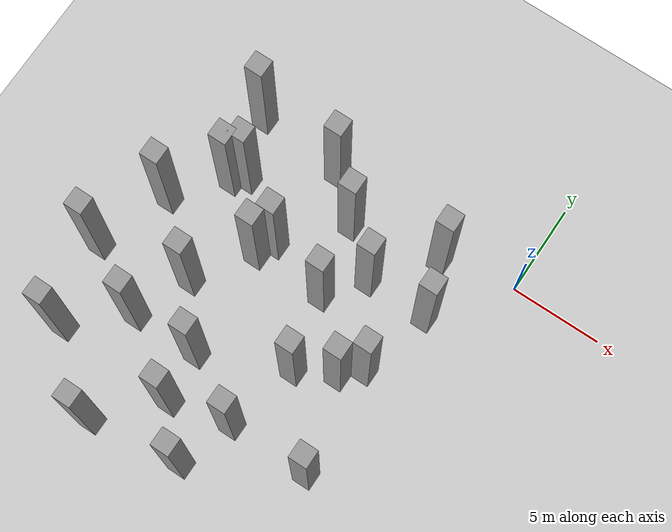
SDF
<sdf version="1.7">
 <world name="default">
  <model name="ground_plane">
   <static>1</static>
   <link name="link">
    <collision name="collision">
     <geometry><plane><normal>0 0 1</normal><size>100 100</size></plane></geometry>
     <surface>
      <contact><collide_bitmask>65535</collide_bitmask></contact>
      <friction><ode><mu>100</mu><mu2>50</mu2></ode></friction>
     </surface>
    </collision>
    <visual name="visual">
     <cast_shadows>0</cast_shadows>
     <geometry><plane><normal>0 0 1</normal><size>100 100</size></plane></geometry>
     <material>
      <script><uri>file://media/materials/scripts/gazebo.material</uri><name>Gazebo/Grey</name></script>
     </material>
    </visual>
   </link>
  </model>
  <model name="unit_box_static95_clone_4">
   <link name="link">
    <inertial>
     <mass>1</mass>
     <inertia>
      <ixx>0.166667</ixx>
      <ixy>0</ixy>
      <ixz>0</ixz>
      <iyy>0.166667</iyy>
      <iyz>0</iyz>
      <izz>0.166667</izz>
     </inertia>
    </inertial>
    <visual name="visual">
     <geometry><box><size>1 1 8</size></box></geometry>
     <material>
      <script><name>Gazebo/Grey</name><uri>file://media/materials/scripts/gazebo.material</uri></script>
      <shader type="pixel"/>
     </material>
    </visual>
    <collision name="collision">
     <geometry><box><size>1 1 8</size></box></geometry>
     <surface>
      <friction>
       <ode><mu>1</mu><mu2>1</mu2><fdir1>0 0 0</fdir1><slip1>0</slip1><slip2>0</slip2></ode>
       <torsional>
        <coefficient>1</coefficient>
        <patch_radius>0</patch_radius>
        <surface_radius>0</surface_radius>
        <use_patch_radius>1</use_patch_radius>
        <ode><slip>0</slip></ode>
       </torsional>
      </friction>
      <bounce><restitution_coefficient>0</restitution_coefficient><threshold>1e+06</threshold></bounce>
      <contact>
       <collide_without_contact>0</collide_without_contact>
       <collide_without_contact_bitmask>1</collide_without_contact_bitmask>
       <collide_bitmask>1</collide_bitmask>
       <ode>
        <soft_cfm>0</soft_cfm>
        <soft_erp>0.2</soft_erp>
        <kp>1e+13</kp>
        <kd>1</kd>
        <max_vel>0.01</max_vel>
        <min_depth>0</min_depth>
       </ode>
       <bullet>
        <split_impulse>1</split_impulse>
        <split_impulse_penetration_threshold>-0.01</split_impulse_penetration_threshold>
        <soft_cfm>0</soft_cfm>
        <soft_erp>0.2</soft_erp>
        <kp>1e+13</kp>
        <kd>1</kd>
       </bullet>
      </contact>
     </surface>
    </collision>
   </link>
   <static>1</static>
   <pose>-3 -4 4 0 -0 0</pose>
  </model>
  <model name="unit_box_static95_clone_5">
   <link name="link">
    <inertial>
     <mass>1</mass>
     <inertia>
      <ixx>0.166667</ixx>
      <ixy>0</ixy>
      <ixz>0</ixz>
      <iyy>0.166667</iyy>
      <iyz>0</iyz>
      <izz>0.166667</izz>
     </inertia>
    </inertial>
    <visual name="visual">
     <geometry><box><size>1 1 8</size></box></geometry>
     <material>
      <script><name>Gazebo/Grey</name><uri>file://media/materials/scripts/gazebo.material</uri></script>
      <shader type="pixel"/>
     </material>
    </visual>
    <collision name="collision">
     <geometry><box><size>1 1 8</size></box></geometry>
     <surface>
      <friction>
       <ode><mu>1</mu><mu2>1</mu2><fdir1>0 0 0</fdir1><slip1>0</slip1><slip2>0</slip2></ode>
       <torsional>
        <coefficient>1</coefficient>
        <patch_radius>0</patch_radius>
        <surface_radius>0</surface_radius>
        <use_patch_radius>1</use_patch_radius>
        <ode><slip>0</slip></ode>
       </torsional>
      </friction>
      <bounce><restitution_coefficient>0</restitution_coefficient><threshold>1e+06</threshold></bounce>
      <contact>
       <collide_without_contact>0</collide_without_contact>
       <collide_without_contact_bitmask>1</collide_without_contact_bitmask>
       <collide_bitmask>1</collide_bitmask>
       <ode>
        <soft_cfm>0</soft_cfm>
        <soft_erp>0.2</soft_erp>
        <kp>1e+13</kp>
        <kd>1</kd>
        <max_vel>0.01</max_vel>
        <min_depth>0</min_depth>
       </ode>
       <bullet>
        <split_impulse>1</split_impulse>
        <split_impulse_penetration_threshold>-0.01</split_impulse_penetration_threshold>
        <soft_cfm>0</soft_cfm>
        <soft_erp>0.2</soft_erp>
        <kp>1e+13</kp>
        <kd>1</kd>
       </bullet>
      </contact>
     </surface>
    </collision>
   </link>
   <static>1</static>
   <pose>-4 -1 4 0 -0 0</pose>
  </model>
  <model name="unit_box_static95_clone_6">
   <link name="link">
    <inertial>
     <mass>1</mass>
     <inertia>
      <ixx>0.166667</ixx>
      <ixy>0</ixy>
      <ixz>0</ixz>
      <iyy>0.166667</iyy>
      <iyz>0</iyz>
      <izz>0.166667</izz>
     </inertia>
    </inertial>
    <visual name="visual">
     <geometry><box><size>1 1 8</size></box></geometry>
     <material>
      <script><name>Gazebo/Grey</name><uri>file://media/materials/scripts/gazebo.material</uri></script>
      <shader type="pixel"/>
     </material>
    </visual>
    <collision name="collision">
     <geometry><box><size>1 1 8</size></box></geometry>
     <surface>
      <friction>
       <ode><mu>1</mu><mu2>1</mu2><fdir1>0 0 0</fdir1><slip1>0</slip1><slip2>0</slip2></ode>
       <torsional>
        <coefficient>1</coefficient>
        <patch_radius>0</patch_radius>
        <surface_radius>0</surface_radius>
        <use_patch_radius>1</use_patch_radius>
        <ode><slip>0</slip></ode>
       </torsional>
      </friction>
      <bounce><restitution_coefficient>0</restitution_coefficient><threshold>1e+06</threshold></bounce>
      <contact>
       <collide_without_contact>0</collide_without_contact>
       <collide_without_contact_bitmask>1</collide_without_contact_bitmask>
       <collide_bitmask>1</collide_bitmask>
       <ode>
        <soft_cfm>0</soft_cfm>
        <soft_erp>0.2</soft_erp>
        <kp>1e+13</kp>
        <kd>1</kd>
        <max_vel>0.01</max_vel>
        <min_depth>0</min_depth>
       </ode>
       <bullet>
        <split_impulse>1</split_impulse>
        <split_impulse_penetration_threshold>-0.01</split_impulse_penetration_threshold>
        <soft_cfm>0</soft_cfm>
        <soft_erp>0.2</soft_erp>
        <kp>1e+13</kp>
        <kd>1</kd>
       </bullet>
      </contact>
     </surface>
    </collision>
   </link>
   <static>1</static>
   <pose>-6.45206 -4 4 0 -0 0</pose>
  </model>
  <model name="unit_box_static95_clone_7">
   <link name="link">
    <inertial>
     <mass>1</mass>
     <inertia>
      <ixx>0.166667</ixx>
      <ixy>0</ixy>
      <ixz>0</ixz>
      <iyy>0.166667</iyy>
      <iyz>0</iyz>
      <izz>0.166667</izz>
     </inertia>
    </inertial>
    <visual name="visual">
     <geometry><box><size>1 1 8</size></box></geometry>
     <material>
      <script><name>Gazebo/Grey</name><uri>file://media/materials/scripts/gazebo.material</uri></script>
      <shader type="pixel"/>
     </material>
    </visual>
    <collision name="collision">
     <geometry><box><size>1 1 8</size></box></geometry>
     <surface>
      <friction>
       <ode><mu>1</mu><mu2>1</mu2><fdir1>0 0 0</fdir1><slip1>0</slip1><slip2>0</slip2></ode>
       <torsional>
        <coefficient>1</coefficient>
        <patch_radius>0</patch_radius>
        <surface_radius>0</surface_radius>
        <use_patch_radius>1</use_patch_radius>
        <ode><slip>0</slip></ode>
       </torsional>
      </friction>
      <bounce><restitution_coefficient>0</restitution_coefficient><threshold>1e+06</threshold></bounce>
      <contact>
       <collide_without_contact>0</collide_without_contact>
       <collide_without_contact_bitmask>1</collide_without_contact_bitmask>
       <collide_bitmask>1</collide_bitmask>
       <ode>
        <soft_cfm>0</soft_cfm>
        <soft_erp>0.2</soft_erp>
        <kp>1e+13</kp>
        <kd>1</kd>
        <max_vel>0.01</max_vel>
        <min_depth>0</min_depth>
       </ode>
       <bullet>
        <split_impulse>1</split_impulse>
        <split_impulse_penetration_threshold>-0.01</split_impulse_penetration_threshold>
        <soft_cfm>0</soft_cfm>
        <soft_erp>0.2</soft_erp>
        <kp>1e+13</kp>
        <kd>1</kd>
       </bullet>
      </contact>
     </surface>
    </collision>
   </link>
   <static>1</static>
   <pose>-7 -10 4 0 -0 0</pose>
  </model>
  <model name="unit_box_static95_clone_8">
   <link name="link">
    <inertial>
     <mass>1</mass>
     <inertia>
      <ixx>0.166667</ixx>
      <ixy>0</ixy>
      <ixz>0</ixz>
      <iyy>0.166667</iyy>
      <iyz>0</iyz>
      <izz>0.166667</izz>
     </inertia>
    </inertial>
    <visual name="visual">
     <geometry><box><size>1 1 8</size></box></geometry>
     <material>
      <script><name>Gazebo/Grey</name><uri>file://media/materials/scripts/gazebo.material</uri></script>
      <shader type="pixel"/>
     </material>
    </visual>
    <collision name="collision">
     <geometry><box><size>1 1 8</size></box></geometry>
     <surface>
      <friction>
       <ode><mu>1</mu><mu2>1</mu2><fdir1>0 0 0</fdir1><slip1>0</slip1><slip2>0</slip2></ode>
       <torsional>
        <coefficient>1</coefficient>
        <patch_radius>0</patch_radius>
        <surface_radius>0</surface_radius>
        <use_patch_radius>1</use_patch_radius>
        <ode><slip>0</slip></ode>
       </torsional>
      </friction>
      <bounce><restitution_coefficient>0</restitution_coefficient><threshold>1e+06</threshold></bounce>
      <contact>
       <collide_without_contact>0</collide_without_contact>
       <collide_without_contact_bitmask>1</collide_without_contact_bitmask>
       <collide_bitmask>1</collide_bitmask>
       <ode>
        <soft_cfm>0</soft_cfm>
        <soft_erp>0.2</soft_erp>
        <kp>1e+13</kp>
        <kd>1</kd>
        <max_vel>0.01</max_vel>
        <min_depth>0</min_depth>
       </ode>
       <bullet>
        <split_impulse>1</split_impulse>
        <split_impulse_penetration_threshold>-0.01</split_impulse_penetration_threshold>
        <soft_cfm>0</soft_cfm>
        <soft_erp>0.2</soft_erp>
        <kp>1e+13</kp>
        <kd>1</kd>
       </bullet>
      </contact>
     </surface>
    </collision>
   </link>
   <static>1</static>
   <pose>-9 -17 4 0 -0 0</pose>
  </model>
  <model name="unit_box_static95_clone_9">
   <link name="link">
    <inertial>
     <mass>1</mass>
     <inertia>
      <ixx>0.166667</ixx>
      <ixy>0</ixy>
      <ixz>0</ixz>
      <iyy>0.166667</iyy>
      <iyz>0</iyz>
      <izz>0.166667</izz>
     </inertia>
    </inertial>
    <visual name="visual">
     <geometry><box><size>1 1 8</size></box></geometry>
     <material>
      <script><name>Gazebo/Grey</name><uri>file://media/materials/scripts/gazebo.material</uri></script>
      <shader type="pixel"/>
     </material>
    </visual>
    <collision name="collision">
     <geometry><box><size>1 1 8</size></box></geometry>
     <surface>
      <friction>
       <ode><mu>1</mu><mu2>1</mu2><fdir1>0 0 0</fdir1><slip1>0</slip1><slip2>0</slip2></ode>
       <torsional>
        <coefficient>1</coefficient>
        <patch_radius>0</patch_radius>
        <surface_radius>0</surface_radius>
        <use_patch_radius>1</use_patch_radius>
        <ode><slip>0</slip></ode>
       </torsional>
      </friction>
      <bounce><restitution_coefficient>0</restitution_coefficient><threshold>1e+06</threshold></bounce>
      <contact>
       <collide_without_contact>0</collide_without_contact>
       <collide_without_contact_bitmask>1</collide_without_contact_bitmask>
       <collide_bitmask>1</collide_bitmask>
       <ode>
        <soft_cfm>0</soft_cfm>
        <soft_erp>0.2</soft_erp>
        <kp>1e+13</kp>
        <kd>1</kd>
        <max_vel>0.01</max_vel>
        <min_depth>0</min_depth>
       </ode>
       <bullet>
        <split_impulse>1</split_impulse>
        <split_impulse_penetration_threshold>-0.01</split_impulse_penetration_threshold>
        <soft_cfm>0</soft_cfm>
        <soft_erp>0.2</soft_erp>
        <kp>1e+13</kp>
        <kd>1</kd>
       </bullet>
      </contact>
     </surface>
    </collision>
   </link>
   <static>1</static>
   <pose>-11.5727 -12 4 0 -0 0</pose>
  </model>
  <model name="unit_box_static95_clone_10">
   <link name="link">
    <inertial>
     <mass>1</mass>
     <inertia>
      <ixx>0.166667</ixx>
      <ixy>0</ixy>
      <ixz>0</ixz>
      <iyy>0.166667</iyy>
      <iyz>0</iyz>
      <izz>0.166667</izz>
     </inertia>
    </inertial>
    <visual name="visual">
     <geometry><box><size>1 1 8</size></box></geometry>
     <material>
      <script><name>Gazebo/Grey</name><uri>file://media/materials/scripts/gazebo.material</uri></script>
      <shader type="pixel"/>
     </material>
    </visual>
    <collision name="collision">
     <geometry><box><size>1 1 8</size></box></geometry>
     <surface>
      <friction>
       <ode><mu>1</mu><mu2>1</mu2><fdir1>0 0 0</fdir1><slip1>0</slip1><slip2>0</slip2></ode>
       <torsional>
        <coefficient>1</coefficient>
        <patch_radius>0</patch_radius>
        <surface_radius>0</surface_radius>
        <use_patch_radius>1</use_patch_radius>
        <ode><slip>0</slip></ode>
       </torsional>
      </friction>
      <bounce><restitution_coefficient>0</restitution_coefficient><threshold>1e+06</threshold></bounce>
      <contact>
       <collide_without_contact>0</collide_without_contact>
       <collide_without_contact_bitmask>1</collide_without_contact_bitmask>
       <collide_bitmask>1</collide_bitmask>
       <ode>
        <soft_cfm>0</soft_cfm>
        <soft_erp>0.2</soft_erp>
        <kp>1e+13</kp>
        <kd>1</kd>
        <max_vel>0.01</max_vel>
        <min_depth>0</min_depth>
       </ode>
       <bullet>
        <split_impulse>1</split_impulse>
        <split_impulse_penetration_threshold>-0.01</split_impulse_penetration_threshold>
        <soft_cfm>0</soft_cfm>
        <soft_erp>0.2</soft_erp>
        <kp>1e+13</kp>
        <kd>1</kd>
       </bullet>
      </contact>
     </surface>
    </collision>
   </link>
   <static>1</static>
   <pose>-12 -6 4 0 -0 0</pose>
  </model>
  <model name="unit_box_static95_clone_31">
   <link name="link">
    <inertial>
     <mass>1</mass>
     <inertia>
      <ixx>0.166667</ixx>
      <ixy>0</ixy>
      <ixz>0</ixz>
      <iyy>0.166667</iyy>
      <iyz>0</iyz>
      <izz>0.166667</izz>
     </inertia>
    </inertial>
    <visual name="visual">
     <geometry><box><size>1 1 8</size></box></geometry>
     <material>
      <script><name>Gazebo/Grey</name><uri>file://media/materials/scripts/gazebo.material</uri></script>
      <shader type="pixel"/>
     </material>
    </visual>
    <collision name="collision">
     <geometry><box><size>1 1 8</size></box></geometry>
     <surface>
      <friction>
       <ode><mu>1</mu><mu2>1</mu2><fdir1>0 0 0</fdir1><slip1>0</slip1><slip2>0</slip2></ode>
       <torsional>
        <coefficient>1</coefficient>
        <patch_radius>0</patch_radius>
        <surface_radius>0</surface_radius>
        <use_patch_radius>1</use_patch_radius>
        <ode><slip>0</slip></ode>
       </torsional>
      </friction>
      <bounce><restitution_coefficient>0</restitution_coefficient><threshold>1e+06</threshold></bounce>
      <contact>
       <collide_without_contact>0</collide_without_contact>
       <collide_without_contact_bitmask>1</collide_without_contact_bitmask>
       <collide_bitmask>1</collide_bitmask>
       <ode>
        <soft_cfm>0</soft_cfm>
        <soft_erp>0.2</soft_erp>
        <kp>1e+13</kp>
        <kd>1</kd>
        <max_vel>0.01</max_vel>
        <min_depth>0</min_depth>
       </ode>
       <bullet>
        <split_impulse>1</split_impulse>
        <split_impulse_penetration_threshold>-0.01</split_impulse_penetration_threshold>
        <soft_cfm>0</soft_cfm>
        <soft_erp>0.2</soft_erp>
        <kp>1e+13</kp>
        <kd>1</kd>
       </bullet>
      </contact>
     </surface>
    </collision>
   </link>
   <static>1</static>
   <pose>-3.52618 -14 4 0 -0 0</pose>
  </model>
  <model name="unit_box_static95_clone_32">
   <link name="link">
    <inertial>
     <mass>1</mass>
     <inertia>
      <ixx>0.166667</ixx>
      <ixy>0</ixy>
      <ixz>0</ixz>
      <iyy>0.166667</iyy>
      <iyz>0</iyz>
      <izz>0.166667</izz>
     </inertia>
    </inertial>
    <visual name="visual">
     <geometry><box><size>1 1 8</size></box></geometry>
     <material>
      <script><name>Gazebo/Grey</name><uri>file://media/materials/scripts/gazebo.material</uri></script>
      <shader type="pixel"/>
     </material>
    </visual>
    <collision name="collision">
     <geometry><box><size>1 1 8</size></box></geometry>
     <surface>
      <friction>
       <ode><mu>1</mu><mu2>1</mu2><fdir1>0 0 0</fdir1><slip1>0</slip1><slip2>0</slip2></ode>
       <torsional>
        <coefficient>1</coefficient>
        <patch_radius>0</patch_radius>
        <surface_radius>0</surface_radius>
        <use_patch_radius>1</use_patch_radius>
        <ode><slip>0</slip></ode>
       </torsional>
      </friction>
      <bounce><restitution_coefficient>0</restitution_coefficient><threshold>1e+06</threshold></bounce>
      <contact>
       <collide_without_contact>0</collide_without_contact>
       <collide_without_contact_bitmask>1</collide_without_contact_bitmask>
       <collide_bitmask>1</collide_bitmask>
       <ode>
        <soft_cfm>0</soft_cfm>
        <soft_erp>0.2</soft_erp>
        <kp>1e+13</kp>
        <kd>1</kd>
        <max_vel>0.01</max_vel>
        <min_depth>0</min_depth>
       </ode>
       <bullet>
        <split_impulse>1</split_impulse>
        <split_impulse_penetration_threshold>-0.01</split_impulse_penetration_threshold>
        <soft_cfm>0</soft_cfm>
        <soft_erp>0.2</soft_erp>
        <kp>1e+13</kp>
        <kd>1</kd>
       </bullet>
      </contact>
     </surface>
    </collision>
   </link>
   <static>1</static>
   <pose>-5 -9 4 0 -0 0</pose>
  </model>
  <model name="unit_box_static95_clone_33">
   <link name="link">
    <inertial>
     <mass>1</mass>
     <inertia>
      <ixx>0.166667</ixx>
      <ixy>0</ixy>
      <ixz>0</ixz>
      <iyy>0.166667</iyy>
      <iyz>0</iyz>
      <izz>0.166667</izz>
     </inertia>
    </inertial>
    <visual name="visual">
     <geometry><box><size>1 1 8</size></box></geometry>
     <material>
      <script><name>Gazebo/Grey</name><uri>file://media/materials/scripts/gazebo.material</uri></script>
      <shader type="pixel"/>
     </material>
    </visual>
    <collision name="collision">
     <geometry><box><size>1 1 8</size></box></geometry>
     <surface>
      <friction>
       <ode><mu>1</mu><mu2>1</mu2><fdir1>0 0 0</fdir1><slip1>0</slip1><slip2>0</slip2></ode>
       <torsional>
        <coefficient>1</coefficient>
        <patch_radius>0</patch_radius>
        <surface_radius>0</surface_radius>
        <use_patch_radius>1</use_patch_radius>
        <ode><slip>0</slip></ode>
       </torsional>
      </friction>
      <bounce><restitution_coefficient>0</restitution_coefficient><threshold>1e+06</threshold></bounce>
      <contact>
       <collide_without_contact>0</collide_without_contact>
       <collide_without_contact_bitmask>1</collide_without_contact_bitmask>
       <collide_bitmask>1</collide_bitmask>
       <ode>
        <soft_cfm>0</soft_cfm>
        <soft_erp>0.2</soft_erp>
        <kp>1e+13</kp>
        <kd>1</kd>
        <max_vel>0.01</max_vel>
        <min_depth>0</min_depth>
       </ode>
       <bullet>
        <split_impulse>1</split_impulse>
        <split_impulse_penetration_threshold>-0.01</split_impulse_penetration_threshold>
        <soft_cfm>0</soft_cfm>
        <soft_erp>0.2</soft_erp>
        <kp>1e+13</kp>
        <kd>1</kd>
       </bullet>
      </contact>
     </surface>
    </collision>
   </link>
   <static>1</static>
   <pose>-8 -6 4 0 -0 0</pose>
  </model>
  <model name="unit_box_static95_clone_34">
   <link name="link">
    <inertial>
     <mass>1</mass>
     <inertia>
      <ixx>0.166667</ixx>
      <ixy>0</ixy>
      <ixz>0</ixz>
      <iyy>0.166667</iyy>
      <iyz>0</iyz>
      <izz>0.166667</izz>
     </inertia>
    </inertial>
    <visual name="visual">
     <geometry><box><size>1 1 8</size></box></geometry>
     <material>
      <script><name>Gazebo/Grey</name><uri>file://media/materials/scripts/gazebo.material</uri></script>
      <shader type="pixel"/>
     </material>
    </visual>
    <collision name="collision">
     <geometry><box><size>1 1 8</size></box></geometry>
     <surface>
      <friction>
       <ode><mu>1</mu><mu2>1</mu2><fdir1>0 0 0</fdir1><slip1>0</slip1><slip2>0</slip2></ode>
       <torsional>
        <coefficient>1</coefficient>
        <patch_radius>0</patch_radius>
        <surface_radius>0</surface_radius>
        <use_patch_radius>1</use_patch_radius>
        <ode><slip>0</slip></ode>
       </torsional>
      </friction>
      <bounce><restitution_coefficient>0</restitution_coefficient><threshold>1e+06</threshold></bounce>
      <contact>
       <collide_without_contact>0</collide_without_contact>
       <collide_without_contact_bitmask>1</collide_without_contact_bitmask>
       <collide_bitmask>1</collide_bitmask>
       <ode>
        <soft_cfm>0</soft_cfm>
        <soft_erp>0.2</soft_erp>
        <kp>1e+13</kp>
        <kd>1</kd>
        <max_vel>0.01</max_vel>
        <min_depth>0</min_depth>
       </ode>
       <bullet>
        <split_impulse>1</split_impulse>
        <split_impulse_penetration_threshold>-0.01</split_impulse_penetration_threshold>
        <soft_cfm>0</soft_cfm>
        <soft_erp>0.2</soft_erp>
        <kp>1e+13</kp>
        <kd>1</kd>
       </bullet>
      </contact>
     </surface>
    </collision>
   </link>
   <static>1</static>
   <pose>-14.6808 -2.83326 4 0 -0 0</pose>
  </model>
  <model name="unit_box_static95_clone_60">
   <link name="link">
    <inertial>
     <mass>1</mass>
     <inertia>
      <ixx>0.166667</ixx>
      <ixy>0</ixy>
      <ixz>0</ixz>
      <iyy>0.166667</iyy>
      <iyz>0</iyz>
      <izz>0.166667</izz>
     </inertia>
    </inertial>
    <visual name="visual">
     <geometry><box><size>1 1 8</size></box></geometry>
     <material>
      <script><name>Gazebo/Grey</name><uri>file://media/materials/scripts/gazebo.material</uri></script>
      <shader type="pixel"/>
     </material>
    </visual>
    <collision name="collision">
     <geometry><box><size>1 1 8</size></box></geometry>
     <surface>
      <friction>
       <ode><mu>1</mu><mu2>1</mu2><fdir1>0 0 0</fdir1><slip1>0</slip1><slip2>0</slip2></ode>
       <torsional>
        <coefficient>1</coefficient>
        <patch_radius>0</patch_radius>
        <surface_radius>0</surface_radius>
        <use_patch_radius>1</use_patch_radius>
        <ode><slip>0</slip></ode>
       </torsional>
      </friction>
      <bounce><restitution_coefficient>0</restitution_coefficient><threshold>1e+06</threshold></bounce>
      <contact>
       <collide_without_contact>0</collide_without_contact>
       <collide_without_contact_bitmask>1</collide_without_contact_bitmask>
       <collide_bitmask>1</collide_bitmask>
       <ode>
        <soft_cfm>0</soft_cfm>
        <soft_erp>0.2</soft_erp>
        <kp>1e+13</kp>
        <kd>1</kd>
        <max_vel>0.01</max_vel>
        <min_depth>0</min_depth>
       </ode>
       <bullet>
        <split_impulse>1</split_impulse>
        <split_impulse_penetration_threshold>-0.01</split_impulse_penetration_threshold>
        <soft_cfm>0</soft_cfm>
        <soft_erp>0.2</soft_erp>
        <kp>1e+13</kp>
        <kd>1</kd>
       </bullet>
      </contact>
     </surface>
    </collision>
   </link>
   <static>1</static>
   <pose>-4 -8 4 0 -0 0</pose>
  </model>
  <model name="unit_box_static95_clone_62">
   <link name="link">
    <inertial>
     <mass>1</mass>
     <inertia>
      <ixx>0.166667</ixx>
      <ixy>0</ixy>
      <ixz>0</ixz>
      <iyy>0.166667</iyy>
      <iyz>0</iyz>
      <izz>0.166667</izz>
     </inertia>
    </inertial>
    <visual name="visual">
     <geometry><box><size>1 1 8</size></box></geometry>
     <material>
      <script><name>Gazebo/Grey</name><uri>file://media/materials/scripts/gazebo.material</uri></script>
      <shader type="pixel"/>
     </material>
    </visual>
    <collision name="collision">
     <geometry><box><size>1 1 8</size></box></geometry>
     <surface>
      <friction>
       <ode><mu>1</mu><mu2>1</mu2><fdir1>0 0 0</fdir1><slip1>0</slip1><slip2>0</slip2></ode>
       <torsional>
        <coefficient>1</coefficient>
        <patch_radius>0</patch_radius>
        <surface_radius>0</surface_radius>
        <use_patch_radius>1</use_patch_radius>
        <ode><slip>0</slip></ode>
       </torsional>
      </friction>
      <bounce><restitution_coefficient>0</restitution_coefficient><threshold>1e+06</threshold></bounce>
      <contact>
       <collide_without_contact>0</collide_without_contact>
       <collide_without_contact_bitmask>1</collide_without_contact_bitmask>
       <collide_bitmask>1</collide_bitmask>
       <ode>
        <soft_cfm>0</soft_cfm>
        <soft_erp>0.2</soft_erp>
        <kp>1e+13</kp>
        <kd>1</kd>
        <max_vel>0.01</max_vel>
        <min_depth>0</min_depth>
       </ode>
       <bullet>
        <split_impulse>1</split_impulse>
        <split_impulse_penetration_threshold>-0.01</split_impulse_penetration_threshold>
        <soft_cfm>0</soft_cfm>
        <soft_erp>0.2</soft_erp>
        <kp>1e+13</kp>
        <kd>1</kd>
       </bullet>
      </contact>
     </surface>
    </collision>
   </link>
   <static>1</static>
   <pose>-11 0 4 0 -0 0</pose>
  </model>
  <model name="unit_box_static95_clone_63">
   <link name="link">
    <inertial>
     <mass>1</mass>
     <inertia>
      <ixx>0.166667</ixx>
      <ixy>0</ixy>
      <ixz>0</ixz>
      <iyy>0.166667</iyy>
      <iyz>0</iyz>
      <izz>0.166667</izz>
     </inertia>
    </inertial>
    <visual name="visual">
     <geometry><box><size>1 1 8</size></box></geometry>
     <material>
      <script><name>Gazebo/Grey</name><uri>file://media/materials/scripts/gazebo.material</uri></script>
      <shader type="pixel"/>
     </material>
    </visual>
    <collision name="collision">
     <geometry><box><size>1 1 8</size></box></geometry>
     <surface>
      <friction>
       <ode><mu>1</mu><mu2>1</mu2><fdir1>0 0 0</fdir1><slip1>0</slip1><slip2>0</slip2></ode>
       <torsional>
        <coefficient>1</coefficient>
        <patch_radius>0</patch_radius>
        <surface_radius>0</surface_radius>
        <use_patch_radius>1</use_patch_radius>
        <ode><slip>0</slip></ode>
       </torsional>
      </friction>
      <bounce><restitution_coefficient>0</restitution_coefficient><threshold>1e+06</threshold></bounce>
      <contact>
       <collide_without_contact>0</collide_without_contact>
       <collide_without_contact_bitmask>1</collide_without_contact_bitmask>
       <collide_bitmask>1</collide_bitmask>
       <ode>
        <soft_cfm>0</soft_cfm>
        <soft_erp>0.2</soft_erp>
        <kp>1e+13</kp>
        <kd>1</kd>
        <max_vel>0.01</max_vel>
        <min_depth>0</min_depth>
       </ode>
       <bullet>
        <split_impulse>1</split_impulse>
        <split_impulse_penetration_threshold>-0.01</split_impulse_penetration_threshold>
        <soft_cfm>0</soft_cfm>
        <soft_erp>0.2</soft_erp>
        <kp>1e+13</kp>
        <kd>1</kd>
       </bullet>
      </contact>
     </surface>
    </collision>
   </link>
   <static>1</static>
   <pose>-15.3485 -3.40813 4 0 -0 0</pose>
  </model>
  <model name="unit_box_static95_clone_79">
   <link name="link">
    <inertial>
     <mass>1</mass>
     <inertia>
      <ixx>0.166667</ixx>
      <ixy>0</ixy>
      <ixz>0</ixz>
      <iyy>0.166667</iyy>
      <iyz>0</iyz>
      <izz>0.166667</izz>
     </inertia>
    </inertial>
    <visual name="visual">
     <geometry><box><size>1 1 8</size></box></geometry>
     <material>
      <script><name>Gazebo/Grey</name><uri>file://media/materials/scripts/gazebo.material</uri></script>
      <shader type="pixel"/>
     </material>
    </visual>
    <collision name="collision">
     <geometry><box><size>1 1 8</size></box></geometry>
     <surface>
      <friction>
       <ode><mu>1</mu><mu2>1</mu2><fdir1>0 0 0</fdir1><slip1>0</slip1><slip2>0</slip2></ode>
       <torsional>
        <coefficient>1</coefficient>
        <patch_radius>0</patch_radius>
        <surface_radius>0</surface_radius>
        <use_patch_radius>1</use_patch_radius>
        <ode><slip>0</slip></ode>
       </torsional>
      </friction>
      <bounce><restitution_coefficient>0</restitution_coefficient><threshold>1e+06</threshold></bounce>
      <contact>
       <collide_without_contact>0</collide_without_contact>
       <collide_without_contact_bitmask>1</collide_without_contact_bitmask>
       <collide_bitmask>1</collide_bitmask>
       <ode>
        <soft_cfm>0</soft_cfm>
        <soft_erp>0.2</soft_erp>
        <kp>1e+13</kp>
        <kd>1</kd>
        <max_vel>0.01</max_vel>
        <min_depth>0</min_depth>
       </ode>
       <bullet>
        <split_impulse>1</split_impulse>
        <split_impulse_penetration_threshold>-0.01</split_impulse_penetration_threshold>
        <soft_cfm>0</soft_cfm>
        <soft_erp>0.2</soft_erp>
        <kp>1e+13</kp>
        <kd>1</kd>
       </bullet>
      </contact>
     </surface>
    </collision>
   </link>
   <static>1</static>
   <pose>-19 -10 4 0 -0 0</pose>
  </model>
  <model name="unit_box_static95_clone_80">
   <link name="link">
    <inertial>
     <mass>1</mass>
     <inertia>
      <ixx>0.166667</ixx>
      <ixy>0</ixy>
      <ixz>0</ixz>
      <iyy>0.166667</iyy>
      <iyz>0</iyz>
      <izz>0.166667</izz>
     </inertia>
    </inertial>
    <visual name="visual">
     <geometry><box><size>1 1 8</size></box></geometry>
     <material>
      <script><name>Gazebo/Grey</name><uri>file://media/materials/scripts/gazebo.material</uri></script>
      <shader type="pixel"/>
     </material>
    </visual>
    <collision name="collision">
     <geometry><box><size>1 1 8</size></box></geometry>
     <surface>
      <friction>
       <ode><mu>1</mu><mu2>1</mu2><fdir1>0 0 0</fdir1><slip1>0</slip1><slip2>0</slip2></ode>
       <torsional>
        <coefficient>1</coefficient>
        <patch_radius>0</patch_radius>
        <surface_radius>0</surface_radius>
        <use_patch_radius>1</use_patch_radius>
        <ode><slip>0</slip></ode>
       </torsional>
      </friction>
      <bounce><restitution_coefficient>0</restitution_coefficient><threshold>1e+06</threshold></bounce>
      <contact>
       <collide_without_contact>0</collide_without_contact>
       <collide_without_contact_bitmask>1</collide_without_contact_bitmask>
       <collide_bitmask>1</collide_bitmask>
       <ode>
        <soft_cfm>0</soft_cfm>
        <soft_erp>0.2</soft_erp>
        <kp>1e+13</kp>
        <kd>1</kd>
        <max_vel>0.01</max_vel>
        <min_depth>0</min_depth>
       </ode>
       <bullet>
        <split_impulse>1</split_impulse>
        <split_impulse_penetration_threshold>-0.01</split_impulse_penetration_threshold>
        <soft_cfm>0</soft_cfm>
        <soft_erp>0.2</soft_erp>
        <kp>1e+13</kp>
        <kd>1</kd>
       </bullet>
      </contact>
     </surface>
    </collision>
   </link>
   <static>1</static>
   <pose>-17.4954 -6 4 0 -0 0</pose>
  </model>
  <model name="unit_box_static95_clone_81">
   <link name="link">
    <inertial>
     <mass>1</mass>
     <inertia>
      <ixx>0.166667</ixx>
      <ixy>0</ixy>
      <ixz>0</ixz>
      <iyy>0.166667</iyy>
      <iyz>0</iyz>
      <izz>0.166667</izz>
     </inertia>
    </inertial>
    <visual name="visual">
     <geometry><box><size>1 1 8</size></box></geometry>
     <material>
      <script><name>Gazebo/Grey</name><uri>file://media/materials/scripts/gazebo.material</uri></script>
      <shader type="pixel"/>
     </material>
    </visual>
    <collision name="collision">
     <geometry><box><size>1 1 8</size></box></geometry>
     <surface>
      <friction>
       <ode><mu>1</mu><mu2>1</mu2><fdir1>0 0 0</fdir1><slip1>0</slip1><slip2>0</slip2></ode>
       <torsional>
        <coefficient>1</coefficient>
        <patch_radius>0</patch_radius>
        <surface_radius>0</surface_radius>
        <use_patch_radius>1</use_patch_radius>
        <ode><slip>0</slip></ode>
       </torsional>
      </friction>
      <bounce><restitution_coefficient>0</restitution_coefficient><threshold>1e+06</threshold></bounce>
      <contact>
       <collide_without_contact>0</collide_without_contact>
       <collide_without_contact_bitmask>1</collide_without_contact_bitmask>
       <collide_bitmask>1</collide_bitmask>
       <ode>
        <soft_cfm>0</soft_cfm>
        <soft_erp>0.2</soft_erp>
        <kp>1e+13</kp>
        <kd>1</kd>
        <max_vel>0.01</max_vel>
        <min_depth>0</min_depth>
       </ode>
       <bullet>
        <split_impulse>1</split_impulse>
        <split_impulse_penetration_threshold>-0.01</split_impulse_penetration_threshold>
        <soft_cfm>0</soft_cfm>
        <soft_erp>0.2</soft_erp>
        <kp>1e+13</kp>
        <kd>1</kd>
       </bullet>
      </contact>
     </surface>
    </collision>
   </link>
   <static>1</static>
   <pose>-18 -14.5584 4 0 -0 0</pose>
  </model>
  <model name="unit_box_static95_clone_82">
   <link name="link">
    <inertial>
     <mass>1</mass>
     <inertia>
      <ixx>0.166667</ixx>
      <ixy>0</ixy>
      <ixz>0</ixz>
      <iyy>0.166667</iyy>
      <iyz>0</iyz>
      <izz>0.166667</izz>
     </inertia>
    </inertial>
    <visual name="visual">
     <geometry><box><size>1 1 8</size></box></geometry>
     <material>
      <script><name>Gazebo/Grey</name><uri>file://media/materials/scripts/gazebo.material</uri></script>
      <shader type="pixel"/>
     </material>
    </visual>
    <collision name="collision">
     <geometry><box><size>1 1 8</size></box></geometry>
     <surface>
      <friction>
       <ode><mu>1</mu><mu2>1</mu2><fdir1>0 0 0</fdir1><slip1>0</slip1><slip2>0</slip2></ode>
       <torsional>
        <coefficient>1</coefficient>
        <patch_radius>0</patch_radius>
        <surface_radius>0</surface_radius>
        <use_patch_radius>1</use_patch_radius>
        <ode><slip>0</slip></ode>
       </torsional>
      </friction>
      <bounce><restitution_coefficient>0</restitution_coefficient><threshold>1e+06</threshold></bounce>
      <contact>
       <collide_without_contact>0</collide_without_contact>
       <collide_without_contact_bitmask>1</collide_without_contact_bitmask>
       <collide_bitmask>1</collide_bitmask>
       <ode>
        <soft_cfm>0</soft_cfm>
        <soft_erp>0.2</soft_erp>
        <kp>1e+13</kp>
        <kd>1</kd>
        <max_vel>0.01</max_vel>
        <min_depth>0</min_depth>
       </ode>
       <bullet>
        <split_impulse>1</split_impulse>
        <split_impulse_penetration_threshold>-0.01</split_impulse_penetration_threshold>
        <soft_cfm>0</soft_cfm>
        <soft_erp>0.2</soft_erp>
        <kp>1e+13</kp>
        <kd>1</kd>
       </bullet>
      </contact>
     </surface>
    </collision>
   </link>
   <static>1</static>
   <pose>-14 -9 4 0 -0 0</pose>
  </model>
  <model name="unit_box_static95_clone_83">
   <link name="link">
    <inertial>
     <mass>1</mass>
     <inertia>
      <ixx>0.166667</ixx>
      <ixy>0</ixy>
      <ixz>0</ixz>
      <iyy>0.166667</iyy>
      <iyz>0</iyz>
      <izz>0.166667</izz>
     </inertia>
    </inertial>
    <visual name="visual">
     <geometry><box><size>1 1 8</size></box></geometry>
     <material>
      <script><name>Gazebo/Grey</name><uri>file://media/materials/scripts/gazebo.material</uri></script>
      <shader type="pixel"/>
     </material>
    </visual>
    <collision name="collision">
     <geometry><box><size>1 1 8</size></box></geometry>
     <surface>
      <friction>
       <ode><mu>1</mu><mu2>1</mu2><fdir1>0 0 0</fdir1><slip1>0</slip1><slip2>0</slip2></ode>
       <torsional>
        <coefficient>1</coefficient>
        <patch_radius>0</patch_radius>
        <surface_radius>0</surface_radius>
        <use_patch_radius>1</use_patch_radius>
        <ode><slip>0</slip></ode>
       </torsional>
      </friction>
      <bounce><restitution_coefficient>0</restitution_coefficient><threshold>1e+06</threshold></bounce>
      <contact>
       <collide_without_contact>0</collide_without_contact>
       <collide_without_contact_bitmask>1</collide_without_contact_bitmask>
       <collide_bitmask>1</collide_bitmask>
       <ode>
        <soft_cfm>0</soft_cfm>
        <soft_erp>0.2</soft_erp>
        <kp>1e+13</kp>
        <kd>1</kd>
        <max_vel>0.01</max_vel>
        <min_depth>0</min_depth>
       </ode>
       <bullet>
        <split_impulse>1</split_impulse>
        <split_impulse_penetration_threshold>-0.01</split_impulse_penetration_threshold>
        <soft_cfm>0</soft_cfm>
        <soft_erp>0.2</soft_erp>
        <kp>1e+13</kp>
        <kd>1</kd>
       </bullet>
      </contact>
     </surface>
    </collision>
   </link>
   <static>1</static>
   <pose>-8 -14 4 0 -0 0</pose>
  </model>
  <model name="unit_box_static95_clone_110">
   <link name="link">
    <inertial>
     <mass>1</mass>
     <inertia>
      <ixx>0.166667</ixx>
      <ixy>0</ixy>
      <ixz>0</ixz>
      <iyy>0.166667</iyy>
      <iyz>0</iyz>
      <izz>0.166667</izz>
     </inertia>
    </inertial>
    <visual name="visual">
     <geometry><box><size>1 1 8</size></box></geometry>
     <material>
      <script><name>Gazebo/Grey</name><uri>file://media/materials/scripts/gazebo.material</uri></script>
      <shader type="pixel"/>
     </material>
    </visual>
    <collision name="collision">
     <geometry><box><size>1 1 8</size></box></geometry>
     <surface>
      <friction>
       <ode><mu>1</mu><mu2>1</mu2><fdir1>0 0 0</fdir1><slip1>0</slip1><slip2>0</slip2></ode>
       <torsional>
        <coefficient>1</coefficient>
        <patch_radius>0</patch_radius>
        <surface_radius>0</surface_radius>
        <use_patch_radius>1</use_patch_radius>
        <ode><slip>0</slip></ode>
       </torsional>
      </friction>
      <bounce><restitution_coefficient>0</restitution_coefficient><threshold>1e+06</threshold></bounce>
      <contact>
       <collide_without_contact>0</collide_without_contact>
       <collide_without_contact_bitmask>1</collide_without_contact_bitmask>
       <collide_bitmask>1</collide_bitmask>
       <ode>
        <soft_cfm>0</soft_cfm>
        <soft_erp>0.2</soft_erp>
        <kp>1e+13</kp>
        <kd>1</kd>
        <max_vel>0.01</max_vel>
        <min_depth>0</min_depth>
       </ode>
       <bullet>
        <split_impulse>1</split_impulse>
        <split_impulse_penetration_threshold>-0.01</split_impulse_penetration_threshold>
        <soft_cfm>0</soft_cfm>
        <soft_erp>0.2</soft_erp>
        <kp>1e+13</kp>
        <kd>1</kd>
       </bullet>
      </contact>
     </surface>
    </collision>
   </link>
   <static>1</static>
   <pose>-11.2466 -14.7459 4 0 -0 0</pose>
  </model>
  <model name="unit_box_static95_clone_111">
   <link name="link">
    <inertial>
     <mass>1</mass>
     <inertia>
      <ixx>0.166667</ixx>
      <ixy>0</ixy>
      <ixz>0</ixz>
      <iyy>0.166667</iyy>
      <iyz>0</iyz>
      <izz>0.166667</izz>
     </inertia>
    </inertial>
    <visual name="visual">
     <geometry><box><size>1 1 8</size></box></geometry>
     <material>
      <script><name>Gazebo/Grey</name><uri>file://media/materials/scripts/gazebo.material</uri></script>
      <shader type="pixel"/>
     </material>
    </visual>
    <collision name="collision">
     <geometry><box><size>1 1 8</size></box></geometry>
     <surface>
      <friction>
       <ode><mu>1</mu><mu2>1</mu2><fdir1>0 0 0</fdir1><slip1>0</slip1><slip2>0</slip2></ode>
       <torsional>
        <coefficient>1</coefficient>
        <patch_radius>0</patch_radius>
        <surface_radius>0</surface_radius>
        <use_patch_radius>1</use_patch_radius>
        <ode><slip>0</slip></ode>
       </torsional>
      </friction>
      <bounce><restitution_coefficient>0</restitution_coefficient><threshold>1e+06</threshold></bounce>
      <contact>
       <collide_without_contact>0</collide_without_contact>
       <collide_without_contact_bitmask>1</collide_without_contact_bitmask>
       <collide_bitmask>1</collide_bitmask>
       <ode>
        <soft_cfm>0</soft_cfm>
        <soft_erp>0.2</soft_erp>
        <kp>1e+13</kp>
        <kd>1</kd>
        <max_vel>0.01</max_vel>
        <min_depth>0</min_depth>
       </ode>
       <bullet>
        <split_impulse>1</split_impulse>
        <split_impulse_penetration_threshold>-0.01</split_impulse_penetration_threshold>
        <soft_cfm>0</soft_cfm>
        <soft_erp>0.2</soft_erp>
        <kp>1e+13</kp>
        <kd>1</kd>
       </bullet>
      </contact>
     </surface>
    </collision>
   </link>
   <static>1</static>
   <pose>-14.0038 -17.6751 4 0 -0 0</pose>
  </model>
  <model name="unit_box_static95_clone_112">
   <link name="link">
    <inertial>
     <mass>1</mass>
     <inertia>
      <ixx>0.166667</ixx>
      <ixy>0</ixy>
      <ixz>0</ixz>
      <iyy>0.166667</iyy>
      <iyz>0</iyz>
      <izz>0.166667</izz>
     </inertia>
    </inertial>
    <visual name="visual">
     <geometry><box><size>1 1 8</size></box></geometry>
     <material>
      <script><name>Gazebo/Grey</name><uri>file://media/materials/scripts/gazebo.material</uri></script>
      <shader type="pixel"/>
     </material>
    </visual>
    <collision name="collision">
     <geometry><box><size>1 1 8</size></box></geometry>
     <surface>
      <friction>
       <ode><mu>1</mu><mu2>1</mu2><fdir1>0 0 0</fdir1><slip1>0</slip1><slip2>0</slip2></ode>
       <torsional>
        <coefficient>1</coefficient>
        <patch_radius>0</patch_radius>
        <surface_radius>0</surface_radius>
        <use_patch_radius>1</use_patch_radius>
        <ode><slip>0</slip></ode>
       </torsional>
      </friction>
      <bounce><restitution_coefficient>0</restitution_coefficient><threshold>1e+06</threshold></bounce>
      <contact>
       <collide_without_contact>0</collide_without_contact>
       <collide_without_contact_bitmask>1</collide_without_contact_bitmask>
       <collide_bitmask>1</collide_bitmask>
       <ode>
        <soft_cfm>0</soft_cfm>
        <soft_erp>0.2</soft_erp>
        <kp>1e+13</kp>
        <kd>1</kd>
        <max_vel>0.01</max_vel>
        <min_depth>0</min_depth>
       </ode>
       <bullet>
        <split_impulse>1</split_impulse>
        <split_impulse_penetration_threshold>-0.01</split_impulse_penetration_threshold>
        <soft_cfm>0</soft_cfm>
        <soft_erp>0.2</soft_erp>
        <kp>1e+13</kp>
        <kd>1</kd>
       </bullet>
      </contact>
     </surface>
    </collision>
   </link>
   <static>1</static>
   <pose>-15.2335 -12.0538 4 0 -0 0</pose>
  </model>
  <model name="unit_box_static95_clone_113">
   <link name="link">
    <inertial>
     <mass>1</mass>
     <inertia>
      <ixx>0.166667</ixx>
      <ixy>0</ixy>
      <ixz>0</ixz>
      <iyy>0.166667</iyy>
      <iyz>0</iyz>
      <izz>0.166667</izz>
     </inertia>
    </inertial>
    <visual name="visual">
     <geometry><box><size>1 1 8</size></box></geometry>
     <material>
      <script><name>Gazebo/Grey</name><uri>file://media/materials/scripts/gazebo.material</uri></script>
      <shader type="pixel"/>
     </material>
    </visual>
    <collision name="collision">
     <geometry><box><size>1 1 8</size></box></geometry>
     <surface>
      <friction>
       <ode><mu>1</mu><mu2>1</mu2><fdir1>0 0 0</fdir1><slip1>0</slip1><slip2>0</slip2></ode>
       <torsional>
        <coefficient>1</coefficient>
        <patch_radius>0</patch_radius>
        <surface_radius>0</surface_radius>
        <use_patch_radius>1</use_patch_radius>
        <ode><slip>0</slip></ode>
       </torsional>
      </friction>
      <bounce><restitution_coefficient>0</restitution_coefficient><threshold>1e+06</threshold></bounce>
      <contact>
       <collide_without_contact>0</collide_without_contact>
       <collide_without_contact_bitmask>1</collide_without_contact_bitmask>
       <collide_bitmask>1</collide_bitmask>
       <ode>
        <soft_cfm>0</soft_cfm>
        <soft_erp>0.2</soft_erp>
        <kp>1e+13</kp>
        <kd>1</kd>
        <max_vel>0.01</max_vel>
        <min_depth>0</min_depth>
       </ode>
       <bullet>
        <split_impulse>1</split_impulse>
        <split_impulse_penetration_threshold>-0.01</split_impulse_penetration_threshold>
        <soft_cfm>0</soft_cfm>
        <soft_erp>0.2</soft_erp>
        <kp>1e+13</kp>
        <kd>1</kd>
       </bullet>
      </contact>
     </surface>
    </collision>
   </link>
   <static>1</static>
   <pose>-8.83718 -1.99882 4 0 -0 0</pose>
  </model>
  <model name="unit_box_static95_clone_114">
   <link name="link">
    <inertial>
     <mass>1</mass>
     <inertia>
      <ixx>0.166667</ixx>
      <ixy>0</ixy>
      <ixz>0</ixz>
      <iyy>0.166667</iyy>
      <iyz>0</iyz>
      <izz>0.166667</izz>
     </inertia>
    </inertial>
    <visual name="visual">
     <geometry><box><size>1 1 8</size></box></geometry>
     <material>
      <script><name>Gazebo/Grey</name><uri>file://media/materials/scripts/gazebo.material</uri></script>
      <shader type="pixel"/>
     </material>
    </visual>
    <collision name="collision">
     <geometry><box><size>1 1 8</size></box></geometry>
     <surface>
      <friction>
       <ode><mu>1</mu><mu2>1</mu2><fdir1>0 0 0</fdir1><slip1>0</slip1><slip2>0</slip2></ode>
       <torsional>
        <coefficient>1</coefficient>
        <patch_radius>0</patch_radius>
        <surface_radius>0</surface_radius>
        <use_patch_radius>1</use_patch_radius>
        <ode><slip>0</slip></ode>
       </torsional>
      </friction>
      <bounce><restitution_coefficient>0</restitution_coefficient><threshold>1e+06</threshold></bounce>
      <contact>
       <collide_without_contact>0</collide_without_contact>
       <collide_without_contact_bitmask>1</collide_without_contact_bitmask>
       <collide_bitmask>1</collide_bitmask>
       <ode>
        <soft_cfm>0</soft_cfm>
        <soft_erp>0.2</soft_erp>
        <kp>1e+13</kp>
        <kd>1</kd>
        <max_vel>0.01</max_vel>
        <min_depth>0</min_depth>
       </ode>
       <bullet>
        <split_impulse>1</split_impulse>
        <split_impulse_penetration_threshold>-0.01</split_impulse_penetration_threshold>
        <soft_cfm>0</soft_cfm>
        <soft_erp>0.2</soft_erp>
        <kp>1e+13</kp>
        <kd>1</kd>
       </bullet>
      </contact>
     </surface>
    </collision>
   </link>
   <static>1</static>
   <pose>-11.5047 -4.99053 4 0 -0 0</pose>
  </model>
  <model name="unit_box_static95_clone_115">
   <link name="link">
    <inertial>
     <mass>1</mass>
     <inertia>
      <ixx>0.166667</ixx>
      <ixy>0</ixy>
      <ixz>0</ixz>
      <iyy>0.166667</iyy>
      <iyz>0</iyz>
      <izz>0.166667</izz>
     </inertia>
    </inertial>
    <visual name="visual">
     <geometry><box><size>1 1 8</size></box></geometry>
     <material>
      <script><name>Gazebo/Grey</name><uri>file://media/materials/scripts/gazebo.material</uri></script>
      <shader type="pixel"/>
     </material>
    </visual>
    <collision name="collision">
     <geometry><box><size>1 1 8</size></box></geometry>
     <surface>
      <friction>
       <ode><mu>1</mu><mu2>1</mu2><fdir1>0 0 0</fdir1><slip1>0</slip1><slip2>0</slip2></ode>
       <torsional>
        <coefficient>1</coefficient>
        <patch_radius>0</patch_radius>
        <surface_radius>0</surface_radius>
        <use_patch_radius>1</use_patch_radius>
        <ode><slip>0</slip></ode>
       </torsional>
      </friction>
      <bounce><restitution_coefficient>0</restitution_coefficient><threshold>1e+06</threshold></bounce>
      <contact>
       <collide_without_contact>0</collide_without_contact>
       <collide_without_contact_bitmask>1</collide_without_contact_bitmask>
       <collide_bitmask>1</collide_bitmask>
       <ode>
        <soft_cfm>0</soft_cfm>
        <soft_erp>0.2</soft_erp>
        <kp>1e+13</kp>
        <kd>1</kd>
        <max_vel>0.01</max_vel>
        <min_depth>0</min_depth>
       </ode>
       <bullet>
        <split_impulse>1</split_impulse>
        <split_impulse_penetration_threshold>-0.01</split_impulse_penetration_threshold>
        <soft_cfm>0</soft_cfm>
        <soft_erp>0.2</soft_erp>
        <kp>1e+13</kp>
        <kd>1</kd>
       </bullet>
      </contact>
     </surface>
    </collision>
   </link>
   <static>1</static>
   <pose>-15.8672 0.39507 4 0 -0 0</pose>
  </model>
 </world>
</sdf>
